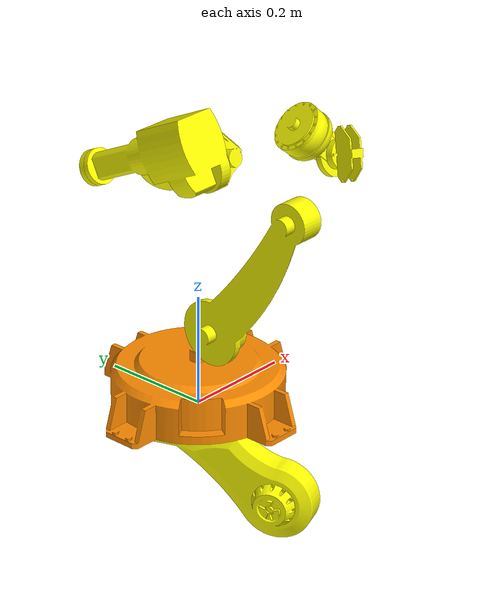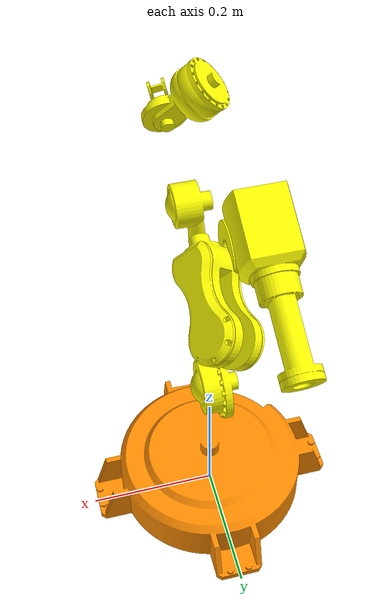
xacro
<?xml version="1.0"?>
<robot xmlns:xacro="http://www.ros.org/wiki/xacro" name="ar3">
    <xacro:arg name="initial_positions_file" default="initial_positions.yaml" />

    <!-- Import ar3 urdf file -->
    <xacro:include filename="$(find arm_description)/urdf/ar3_moveit.urdf" />

    <!-- Import control_xacro -->
    <xacro:include filename="ar3.ros2_control.xacro" />

    <xacro:ar3_ros2_control name="FakeSystem" initial_positions_file="$(arg initial_positions_file)"/>

</robot>

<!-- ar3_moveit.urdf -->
<robot name="ar3">
    <link name="base_footprint"/>

    <link name="base_link">
        <visual>
            <origin rpy="0 0 0" xyz="0 0 0" />
            <geometry>
                <mesh filename="package://arm_description/meshes/base_link.STL" />
            </geometry>
            <material name="Orange">
                    <color rgba="1 0.5490 0.0 1.0"/>
            </material>
        </visual>
        <collision>
            <origin rpy="0 0 0" xyz="0 0 0" />
            <geometry>
                <mesh filename="package://arm_description/meshes/base_link.STL" />
            </geometry>
        </collision>
        <inertial>
            <origin rpy="0 0 0" xyz="0 0 0" />
            <mass value="20" />
            <inertia ixx="1E-2" ixy="0" ixz="0" iyy="1E-2" iyz="0" izz="1E-2" />
        </inertial>
    </link>
    <joint name="base_link2base_footprint" type="fixed">
        <parent link="base_footprint" />
        <child link="base_link" />
        <origin xyz="0 0 0" />
    </joint>
    <link name="link_1">
        <visual>
            <origin rpy="0 0 0" xyz="0 0 0" />
            <geometry>
                <mesh filename="package://arm_description/meshes/link_1.STL" />
            </geometry>
            <material name="">
                <color rgba="1 1 0 1" />
            </material>
        </visual>
        <collision>
            <origin rpy="0 0 0" xyz="0 0 0" />
            <geometry>
                <mesh filename="package://arm_description/meshes/link_1.STL" />
            </geometry>

        </collision>
        <inertial>
            <origin rpy="0 0 0" xyz="0 0 0" />
            <mass value="0.01" />
            <inertia ixx="1E-2" ixy="0" ixz="0" iyy="1E-2" iyz="0" izz="1E-2" />
        </inertial>
    </link>
    <joint name="joint_1" type="revolute">
        <origin rpy="3.1415926 0 0" xyz="0 0 0.003445" />
        <parent link="base_link" />
        <child link="link_1" />
        <axis xyz="0 0 1" />
        <limit effort="1E8" lower="-2.96706" upper="2.96706" velocity="0.5" />
    </joint>
    <link name="link_2">
        <visual>
            <origin rpy="0 0 0" xyz="0 0 0" />
            <geometry>
                <mesh filename="package://arm_description/meshes/link_2.STL" />
            </geometry>
            <material name="">
                <color rgba="1 1 0 1" />
            </material>
        </visual>
        <collision>
            <origin rpy="0 0 0" xyz="0 0 0" />
            <geometry>
                <mesh filename="package://arm_description/meshes/link_2.STL" />
            </geometry>
        </collision>
        <inertial>
            <origin rpy="0 0 0" xyz="0 0 0" />
            <mass value="0.01" />
            <inertia ixx="1E-3" ixy="0" ixz="0" iyy="1E-3" iyz="0" izz="1E-3" />
        </inertial>
    </link>
    <joint name="joint_2" type="revolute">
        <origin rpy="1.5708 0.5236 -1.5708" xyz="0 0.064146 -0.16608" />
        <parent link="link_1" />
        <child link="link_2" />
        <axis xyz="0 0 -1" />
        <limit effort="1E15" lower="-0.6911503720000001" upper="1.5707963" velocity="0.5" />
    </joint>
    <link name="link_3">
        <visual>
            <origin rpy="0 0 0" xyz="0 0 0" />
            <geometry>
                <mesh filename="package://arm_description/meshes/link_3.STL" />
            </geometry>
            <material name="">
                <color rgba="1 1 0 1" />
            </material>
        </visual>
        <collision>
            <origin rpy="0 0 0" xyz="0 0 0" />
            <geometry>
                <mesh filename="package://arm_description/meshes/link_3.STL" />
            </geometry>
        </collision>
        <inertial>
            <origin rpy="0 0 0" xyz="0 0 0" />
            <mass value="0.01" />
            <inertia ixx="1E-3" ixy="0" ixz="0" iyy="1E-3" iyz="0" izz="1E-3" />
        </inertial>
    </link>
    <joint name="joint_3" type="revolute">
        <origin rpy="0 0 -1.04720367321" xyz="0.1525 -0.26414 0" />
        <parent link="link_2" />
        <child link="link_3" />
        <axis xyz="0 0 -1" />
        <limit effort="1E8" lower="0.0174533" upper="2.5080381" velocity="0.5" />
    </joint>
    <link name="link_4">
        <visual>
            <origin rpy="0 0 0" xyz="0 0 0" />
            <geometry>
                <mesh filename="package://arm_description/meshes/link_4.STL" />
            </geometry>
            <material name="">
                <color rgba="1 1 0 1" />
            </material>
        </visual>
        <collision>
            <origin rpy="0 0 0" xyz="0 0 0" />
            <geometry>
                <mesh filename="package://arm_description/meshes/link_4.STL" />
            </geometry>
        </collision>
        <inertial>
            <origin rpy="0 0 0" xyz="0 0 0" />
            <mass value="0.01" />
            <inertia ixx="1E-3" ixy="0" ixz="0" iyy="1E-3" iyz="0" izz="1E-3" />
        </inertial>
    </link>
    <joint name="joint_4" type="revolute">
        <origin rpy="1.5708 -1.2554 -1.5708" xyz="0 0 0.00675" />
        <parent link="link_3" />
        <child link="link_4" />
        <axis xyz="0 0 -1" />
        <limit effort="1E8" lower="-2.8710666" upper="2.8710666" velocity="0.5" />
    </joint>
    <link name="link_5">
        <visual>
            <origin rpy="0 0 0" xyz="0 0 0" />
            <geometry>
                <mesh filename="package://arm_description/meshes/link_5.STL" />
            </geometry>
            <material name="">
                <color rgba="1 1 0 1" />
            </material>
        </visual>
        <collision>
            <origin rpy="0 0 0" xyz="0 0 0" />
            <geometry>
                <mesh filename="package://arm_description/meshes/link_5.STL" />
            </geometry>
        </collision>
        <inertial>
            <origin rpy="0 0 0" xyz="0 0 0" />
            <mass value="0.01" />
            <inertia ixx="1E-3" ixy="0" ixz="0" iyy="1E-3" iyz="0" izz="1E-3" />
        </inertial>
    </link>
    <joint name="joint_5" type="revolute">
        <origin rpy="3.1415926 0 -2.8262" xyz="0 0 -0.22225" />
        <parent link="link_4" />
        <child link="link_5" />
        <axis xyz="1 0 0" />
        <limit effort="1E8" lower="-1.81776042" upper="1.81776042" velocity="0.5" />
    </joint>
    <link name="link_6">
        <visual>
            <origin rpy="0 0 0" xyz="0 0 0" />
            <geometry>
                <mesh filename="package://arm_description/meshes/link_6.STL" />
            </geometry>
            <material name="">
                <color rgba="1 1 0 1" />
            </material>
        </visual>
        <collision>
            <origin rpy="0 0 0" xyz="0 0 0" />
            <geometry>
                <mesh filename="package://arm_description/meshes/link_6.STL" />
            </geometry>
        </collision>
        <inertial>
            <origin rpy="0 0 0" xyz="0 0 0" />
            <mass value="0.01" />
            <inertia ixx="1E-3" ixy="0" ixz="0" iyy="1E-3" iyz="0" izz="1E-3" />
        </inertial>
    </link>
    <joint name="joint_6" type="revolute">
        <origin rpy="0 0 3.1416" xyz="-0.000294 0 0.02117" />
        <parent link="link_5" />
        <child link="link_6" />
        <axis xyz="0 0 1" />
        <limit effort="1E8" lower="-2.5848326" upper="2.5848326" velocity="0.5" />
    </joint>

    <link name="camera_link">
        <visual>
            <origin rpy="0 0 1.5707963" xyz="0 0 0" />
            <geometry>
                <box size="0.01 0.005 0.01" />
            </geometry>
        </visual>
        <collision>
            <origin rpy="0 0 1.5707963" xyz="0 0 0" />
            <geometry>
                <box size="0.01 0.005 0.01" />
            </geometry>
        </collision>
        <inertial>
            <origin rpy="0 0 1.5707963" xyz="0 0 0" />
            <mass value="0.001" />
            <inertia ixx="1.04167E-7" ixy="0" ixz="0" iyy="1.66667E-7" iyz="0" izz="1.04167E-7" />
        </inertial>
    </link>
    <joint name="camera_joint" type="fixed">
        <origin rpy="1.5707963 -1.5707963 0" xyz="0 0 0.016" />
        <parent link="link_6" />
        <child link="camera_link" />
        <axis xyz="0 0 0" />
    </joint>

    <!-- camera -->
    <gazebo reference="camera_link">
        <sensor type="camera" name="RGBcamera">
            <update_rate>30</update_rate>
            <camera name="gripper_camera">
                <horizontal_fov>1.5707963</horizontal_fov>
                <image>
                    <width>1280</width>
                    <height>720</height>
                    <format>R8G8B8</format>
                </image>
                <clip>
                    <near>0.02</near>
                    <far>300</far>
                </clip>
                <noise>
                    <type>gaussian</type>
                    <mean>0.0</mean>
                    <stddev>0.007</stddev>
                </noise>
            </camera>
            <plugin name="camera_controller" filename="libgazebo_ros_camera.so">
                <alwaysOn>true</alwaysOn>
                <updateRate>0.0</updateRate>
                <camera_name>/gripper_camera</camera_name>
                <image_topic_name>image_raw</image_topic_name>
                <cameraInfo_topic_name>camera_info</cameraInfo_topic_name>
                <frame_name>camera_link</frame_name>
                <hackBaseline>0.07</hackBaseline>
                <distortionK1>0.0</distortionK1>
                <distortionK2>0.0</distortionK2>
                <distortionK3>0.0</distortionK3>
                <distortionT1>0.0</distortionT1>
                <distortionT2>0.0</distortionT2>
            </plugin>
        </sensor>
        <sensor type="ray" name="gripper_laser">
            <pose>0 0 0 0 0 0</pose>
            <visualize>true</visualize>
            <update_rate>30</update_rate>
            <ray>
                <scan>
                    <horizontal>
                        <samples>20</samples>
                        <resolution>1</resolution>
                        <min_angle>-0.08726646</min_angle>
                        <max_angle>0.08726646</max_angle>
                    </horizontal>
                </scan>
                <range>
                    <min>0.01</min>
                    <max>1.0</max>
                    <resolution>0.01</resolution>
                </range>
                <noise>
                    <type>gaussian</type>
                    <mean>0.0</mean>
                    <stddev>0.01</stddev>
                </noise>
            </ray>
            <plugin name="gripper_laser_controller" filename="libgazebo_ros_ray_sensor.so">
                <topic_name>/gripper/laser/scan</topic_name>
                <frame_name>camera_link</frame_name>
            </plugin>
        </sensor>
    </gazebo>

    <gazebo reference="base_link">
        <material>Gazebo/Orange</material>
        <turnGravityOff>false</turnGravityOff>
    </gazebo>
    <gazebo reference="link_1">
        <material>Gazebo/Green</material>
        <turnGravityOff>false</turnGravityOff>
    </gazebo>
    <gazebo reference="link_2">
        <material>Gazebo/Grey</material>
        <turnGravityOff>false</turnGravityOff>
    </gazebo>
    <gazebo reference="link_3">
        <material>Gazebo/Green</material>
        <turnGravityOff>false</turnGravityOff>
    </gazebo>
    <gazebo reference="link_4">
        <material>Gazebo/Grey</material>
        <turnGravityOff>false</turnGravityOff>
    </gazebo>
    <gazebo reference="link_5">
        <material>Gazebo/Green</material>
        <turnGravityOff>false</turnGravityOff>
    </gazebo>
    <gazebo reference="link_6">
        <material>Gazebo/Grey</material>
        <turnGravityOff>false</turnGravityOff>
    </gazebo>
    <gazebo reference="camera_link">
        <material>Gazebo/Red</material>
        <turnGravityOff>false</turnGravityOff>
    </gazebo>
    <gazebo>
        <plugin name="gazebo_ros2_control" filename="libgazebo_ros2_control.so">
            <parameters>$(find arm_moveit_config)/config/ros2_controllers.yaml</parameters>
        </plugin>
    </gazebo>
</robot>
